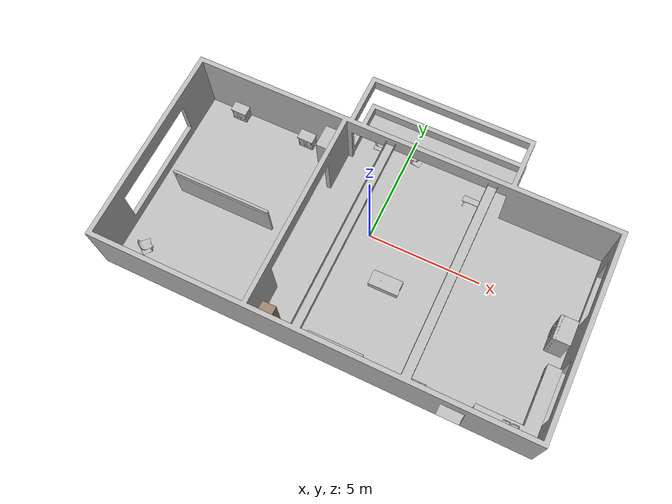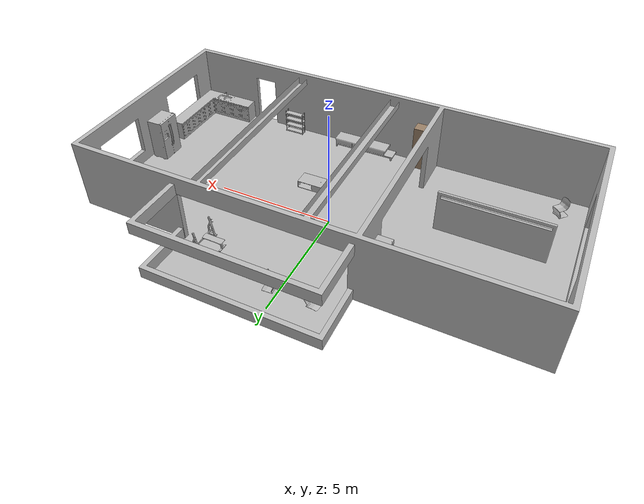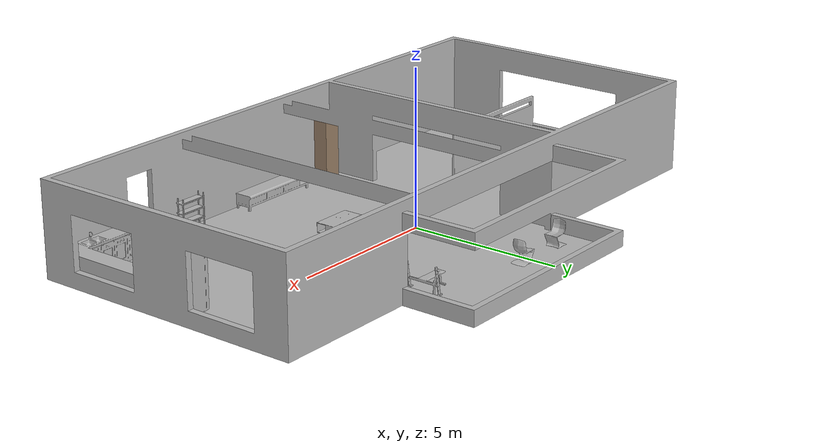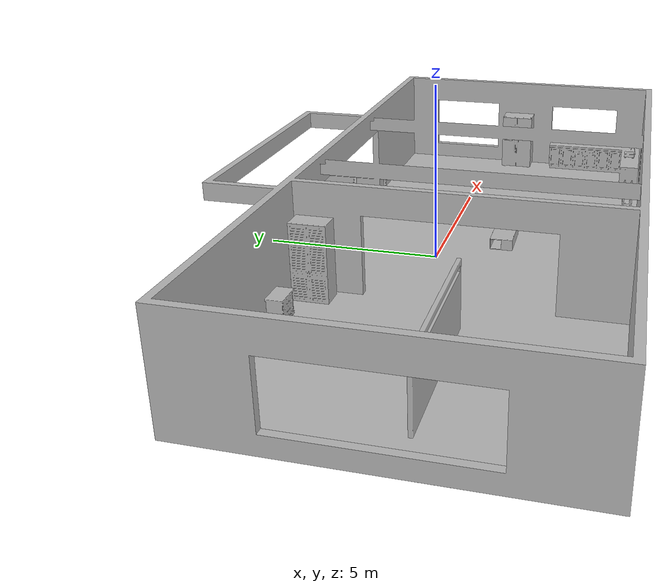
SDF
<sdf version="1.8">
 <world name="small_house">
  <physics name="1ms" type="ignored">
   <max_step_size>0.003</max_step_size>
   <real_time_factor>1.0</real_time_factor>
  </physics>
  <plugin name="ignition::gazebo::systems::Physics" filename="ignition-gazebo-physics-system"/>
  <plugin name="ignition::gazebo::systems::UserCommands" filename="ignition-gazebo-user-commands-system"/>
  <plugin name="ignition::gazebo::systems::SceneBroadcaster" filename="ignition-gazebo-scene-broadcaster-system"/>
  <plugin name="ignition::gazebo::systems::Contact" filename="ignition-gazebo-contact-system"/>
  <gravity>0 0 -9.8</gravity>
  <scene><ambient>0.6 0.6 0.6 1</ambient><background>0.7 0.7 0.7 1</background><shadows>false</shadows></scene>
  <light type="directional" name="sun">
   <cast_shadows>false</cast_shadows>
   <pose>0 0 10 0 0 0</pose>
   <diffuse>0.8 0.8 0.8 1</diffuse>
   <specular>0.2 0.2 0.2 1</specular>
   <direction>-0.3 0.2 -1</direction>
  </light>
  <model name="ground_plane">
   <static>true</static>
   <link name="link">
    <collision name="collision">
     <pose>0 0 -0.05 0 0 0</pose>
     <geometry><plane><normal>0 0 1</normal><size>60 60</size></plane></geometry>
    </collision>
   </link>
  </model>
  <include>
   <name>NightStand_01_001</name>
   <static>true</static>
   <uri>model://aws_robomaker_residential_NightStand_01</uri>
   <pose>-7.7255 2.8604 0.0053 -0.0000 0.0000 0.0000</pose>
  </include>
  <include>
   <name>NightStand_01_002</name>
   <static>true</static>
   <uri>model://aws_robomaker_residential_NightStand_01</uri>
   <pose>-4.4073 2.8604 0.0053 0.0000 0.0000 0.0000</pose>
  </include>
  <include>
   <name>ChairD_01_001</name>
   <static>true</static>
   <uri>model://aws_robomaker_residential_ChairD_01</uri>
   <pose>-1.3808 4.1045 0.0000 0.0000 -0.0000 0.0000</pose>
  </include>
  <include>
   <name>ChairD_01_002</name>
   <static>true</static>
   <uri>model://aws_robomaker_residential_ChairD_01</uri>
   <pose>0.3252 4.1045 0.0000 0.0000 -0.0000 -3.1387</pose>
  </include>
  <include>
   <name>ChairD_01_003</name>
   <static>true</static>
   <uri>model://aws_robomaker_residential_ChairD_01</uri>
   <pose>-8.2708 -4.5045 0.0000 0.0000 -0.0000 0.8697</pose>
  </include>
  <include>
   <name>CoffeeTable_01_001</name>
   <static>true</static>
   <uri>model://aws_robomaker_residential_CoffeeTable_01</uri>
   <pose>1.5123 -1.7334 0.0420 0.0000 0.0000 0.0100</pose>
  </include>
  <include>
   <name>FitnessEquipment_01_001</name>
   <static>true</static>
   <uri>model://aws_robomaker_residential_FitnessEquipment_01</uri>
   <pose>3.4847 3.1691 0.0032 0.0000 -0.0000 0.0000</pose>
  </include>
  <include>
   <name>HouseWallB_01_001</name>
   <static>true</static>
   <uri>model://aws_robomaker_residential_HouseWallB_01</uri>
  </include>
  <include>
   <name>FloorB_01_001</name>
   <static>true</static>
   <uri>model://aws_robomaker_residential_FloorB_01</uri>
  </include>
  <include>
   <name>KitchenCabinet_01_001</name>
   <static>true</static>
   <uri>model://aws_robomaker_residential_KitchenCabinet_01</uri>
   <pose>8.0020 -3.8365 0.0121 0.0000 -0.0000 -3.1400</pose>
  </include>
  <include>
   <name>Refrigerator_01_001</name>
   <static>true</static>
   <uri>model://aws_robomaker_residential_Refrigerator_01</uri>
   <pose>8.7027 -1.0320 0.0000 0.0000 -0.0000 -1.5635</pose>
  </include>
  <include>
   <name>ShoeRack_01_001</name>
   <static>true</static>
   <uri>model://aws_robomaker_residential_ShoeRack_01</uri>
   <pose>4.2980 -5.1736 0.0000 0.0000 -0.0000 0.0000</pose>
  </include>
  <include>
   <name>TVCabinet_01_001</name>
   <static>true</static>
   <uri>model://aws_robomaker_residential_TVCabinet_01</uri>
   <pose>0.6295 -5.1836 -0.0170 0.0000 -0.0000 1.5792</pose>
  </include>
  <include>
   <name>RoomWall_01_001</name>
   <static>true</static>
   <uri>model://aws_robomaker_residential_RoomWall_01</uri>
   <pose>-6.0976 -1.4962 0.0281 0.0000 -0.0000 0.0000</pose>
  </include>
  <include>
   <name>Wardrobe_01_001</name>
   <static>true</static>
   <uri>model://aws_robomaker_residential_Wardrobe_01</uri>
   <pose>-3.1467 2.4762 0.0007 0.0000 -0.0000 -1.5697</pose>
  </include>
  <model name="AirconditionerB_01_001_0">
   <static>true</static>
   <pose>-1.9583 -5.1823 1.0148 0 0 0.0000</pose>
   <link name="link">
    <collision name="collision"><geometry><box><size>0.600 0.500 2.023</size></box></geometry></collision>
    <visual name="visual">
     <geometry><box><size>0.600 0.500 2.023</size></box></geometry>
     <material><ambient>0.6 0.5 0.4 1</ambient><diffuse>0.6 0.5 0.4 1</diffuse></material>
    </visual>
   </link>
  </model>
 </world>
</sdf>

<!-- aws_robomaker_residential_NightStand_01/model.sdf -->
<sdf version="1.6">
  <model name="aws_robomaker_residential_NightStand_01">
    <link name="link">
      <inertial><mass>13.6</mass><inertia><ixx>1</ixx><ixy>0</ixy><ixz>0</ixz><iyy>1</iyy><iyz>0</iyz><izz>1</izz></inertia></inertial>
      <collision name="collision">
        <geometry>
          <mesh>
            <uri>model://aws_robomaker_residential_NightStand_01/meshes/aws_NightStand_01_collision.DAE</uri>
            <scale>1 1 1</scale>
          </mesh>
        </geometry>
      </collision>
      <visual name="visual">
	    <geometry>
          <mesh>
            <uri>model://aws_robomaker_residential_NightStand_01/meshes/aws_NightStand_01_visual.DAE</uri>
          </mesh>
        </geometry>
</visual>
    </link>
    <static>1</static>
  </model>
</sdf>

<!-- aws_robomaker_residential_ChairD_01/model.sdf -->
<sdf version="1.6">
  <model name="aws_robomaker_residential_ChairD_01">
    <link name="link">

      <inertial><mass>4.5</mass><inertia><ixx>1</ixx><ixy>0</ixy><ixz>0</ixz><iyy>1</iyy><iyz>0</iyz><izz>1</izz></inertia></inertial>

      <collision name="collision">

        <geometry>
          <mesh>
            <uri>model://aws_robomaker_residential_ChairD_01/meshes/aws_ChairD_01_collision.DAE</uri>
            <scale>1 1 1</scale>
          </mesh>
        </geometry>

      </collision>
      <visual name="visual">
	    <geometry>
          <mesh>
            <uri>model://aws_robomaker_residential_ChairD_01/meshes/aws_ChairD_01_visual.DAE</uri>
          </mesh>
        </geometry>
</visual>
    </link>
  </model>
</sdf>

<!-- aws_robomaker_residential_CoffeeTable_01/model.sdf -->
<sdf version="1.6">
  <model name="aws_robomaker_residential_CoffeeTable_01">
    <link name="link">
      <inertial><mass>21.7</mass><inertia><ixx>1</ixx><ixy>0</ixy><ixz>0</ixz><iyy>1</iyy><iyz>0</iyz><izz>1</izz></inertia></inertial>

      <collision name="collision">
        <geometry>
          <mesh>
            <uri>model://aws_robomaker_residential_CoffeeTable_01/meshes/aws_CoffeeTable_01_collision.DAE</uri>
            <scale>1 1 1</scale>
          </mesh>
        </geometry>

        <surface>
          <contact>
            <ode>
              <max_vel>0.01</max_vel>
            </ode>
          </contact>
         </surface>
      </collision>

      <visual name="visual">
	    <geometry>
          <mesh>
            <uri>model://aws_robomaker_residential_CoffeeTable_01/meshes/aws_CoffeeTable_01_visual.DAE</uri>
          </mesh>
        </geometry>
</visual>
    </link>
    <static>1</static>
  </model>
</sdf>

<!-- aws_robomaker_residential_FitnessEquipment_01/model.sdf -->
<sdf version="1.6">
  <model name="aws_robomaker_residential_FitnessEquipment_01">
    <link name="link">
      <inertial><mass>80</mass><inertia><ixx>1</ixx><ixy>0</ixy><ixz>0</ixz><iyy>1</iyy><iyz>0</iyz><izz>1</izz></inertia></inertial>
      <collision name="collision">
        <geometry>
          <mesh>
            <uri>model://aws_robomaker_residential_FitnessEquipment_01/meshes/aws_FitnessEquipment_01_collision.DAE</uri>
            <scale>1 1 1</scale>
          </mesh>
        </geometry>
      </collision>
      <visual name="visual">
	    <geometry>
          <mesh>
            <uri>model://aws_robomaker_residential_FitnessEquipment_01/meshes/aws_FitnessEquipment_01_visual.DAE</uri>
          </mesh>
        </geometry>
</visual>
    </link>
  <static>1</static>
  </model>
</sdf>

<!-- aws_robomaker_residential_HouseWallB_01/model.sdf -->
<sdf version="1.6">
  <model name="aws_robomaker_residential_HouseWallB_01">
    <link name="link">
      <inertial><mass>1</mass><inertia><ixx>1</ixx><ixy>0</ixy><ixz>0</ixz><iyy>1</iyy><iyz>0</iyz><izz>1</izz></inertia></inertial>
      <collision name="collision">
        <geometry>
          <mesh>
            <uri>model://aws_robomaker_residential_HouseWallB_01/meshes/aws_HouseWallB_01_collision.DAE</uri>
            <scale>1 1 1</scale>
          </mesh>
        </geometry>
      </collision>
      <visual name="visual">
	    <geometry>
          <mesh>
            <uri>model://aws_robomaker_residential_HouseWallB_01/meshes/aws_HouseWallB_01_visual.DAE</uri>
          </mesh>
        </geometry>
</visual>
    </link>
<static>1</static>
  </model>
</sdf>

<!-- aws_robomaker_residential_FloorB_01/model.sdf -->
<sdf version="1.6">
  <model name="aws_robomaker_residential_FloorB_01">
    <link name="link">
      <inertial><mass>100</mass><inertia><ixx>1</ixx><ixy>0</ixy><ixz>0</ixz><iyy>1</iyy><iyz>0</iyz><izz>1</izz></inertia></inertial>

      <collision name="collision">
        <geometry>
          <mesh>
            <uri>model://aws_robomaker_residential_FloorB_01/meshes/aws_FloorB_01_collision.DAE</uri>
            <scale>1 1 0.9</scale>
          </mesh>
        </geometry>

        <surface>
          <friction>
            <ode>
              <mu>100</mu>
              <mu2>50</mu2>
            </ode>
          </friction>
        </surface>
      </collision>

      <visual name="visual">
	    <geometry>
          <mesh>
            <uri>model://aws_robomaker_residential_FloorB_01/meshes/aws_FloorB_01_visual.DAE</uri>
          </mesh>
        </geometry>
</visual>
    </link>

	<static>1</static>
  </model>
</sdf>

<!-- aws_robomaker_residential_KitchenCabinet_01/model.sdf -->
<sdf version="1.6">
  <model name="aws_robomaker_residential_KitchenCabinet_01">
    <link name="link">
      <inertial><mass>1</mass><inertia><ixx>1</ixx><ixy>0</ixy><ixz>0</ixz><iyy>1</iyy><iyz>0</iyz><izz>1</izz></inertia></inertial>
      <collision name="collision">
        <laser_retro>0</laser_retro>
        <max_contacts>10</max_contacts>
        <geometry>
          <mesh>
            <uri>model://aws_robomaker_residential_KitchenCabinet_01/meshes/aws_KitchenCabinet_01_collision.DAE</uri>
            <scale>1 1 1</scale>
          </mesh>
        </geometry>
      </collision>
      <visual name="visual">
	    <geometry>
          <mesh>
            <uri>model://aws_robomaker_residential_KitchenCabinet_01/meshes/aws_KitchenCabinet_01_visual.DAE</uri>
          </mesh>
        </geometry>
</visual>
    </link>

    <static>1</static>
  </model>
</sdf>

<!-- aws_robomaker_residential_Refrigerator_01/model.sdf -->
<sdf version="1.6">
  <model name="aws_robomaker_residential_Refrigerator_01">
    <link name="link">
      <inertial><mass>1</mass><inertia><ixx>1</ixx><ixy>0</ixy><ixz>0</ixz><iyy>1</iyy><iyz>0</iyz><izz>1</izz></inertia></inertial>
      <collision name="collision">
        <geometry>
          <mesh>
            <uri>model://aws_robomaker_residential_Refrigerator_01/meshes/aws_Refrigerator_01_collision.DAE</uri>
            <scale>1 1 1</scale>
          </mesh>
        </geometry>
      </collision>
      <visual name="visual">
	    <geometry>
          <mesh>
            <uri>model://aws_robomaker_residential_Refrigerator_01/meshes/aws_Refrigerator_01_visual.DAE</uri>
          </mesh>
        </geometry>
</visual>
    </link>
    <static>1</static>
  </model>
</sdf>

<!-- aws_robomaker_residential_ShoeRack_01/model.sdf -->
<sdf version="1.6">
  <model name="aws_robomaker_residential_ShoeRack_01">
    <link name="link">

      <inertial><mass>6</mass><inertia><ixx>1</ixx><ixy>0</ixy><ixz>0</ixz><iyy>1</iyy><iyz>0</iyz><izz>1</izz></inertia></inertial>

      <collision name="collision">

        <geometry>
          <mesh>
            <uri>model://aws_robomaker_residential_ShoeRack_01/meshes/aws_ShoeRack_01_collision.DAE</uri>
            <scale>1 1 1</scale>
          </mesh>
        </geometry>

        <surface>
          <friction>
            <ode>
              <mu>0.2</mu>
              <mu2>0.2</mu2>
            </ode>
          </friction>

          <contact>
            <ode>
              <kd>2500</kd>
            </ode>
          </contact>

        </surface>

      </collision>

      <visual name="visual">
	    <geometry>
          <mesh>
            <uri>model://aws_robomaker_residential_ShoeRack_01/meshes/aws_ShoeRack_01_visual.DAE</uri>
          </mesh>
        </geometry>
</visual>

    </link>
  </model>
</sdf>

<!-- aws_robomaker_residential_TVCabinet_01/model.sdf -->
<sdf version="1.6">
  <model name="aws_robomaker_residential_TVCabinet_01">
    <link name="link">

      <inertial><mass>59.2</mass><inertia><ixx>1</ixx><ixy>0</ixy><ixz>0</ixz><iyy>1</iyy><iyz>0</iyz><izz>1</izz></inertia></inertial>

      <collision name="collision">
        <geometry>
          <mesh>
            <uri>model://aws_robomaker_residential_TVCabinet_01/meshes/aws_TVCabinet_01_collision.DAE</uri>
            <scale>1 1 1</scale>
          </mesh>
        </geometry>
      </collision>

      <visual name="visual">
	    <geometry>
          <mesh>
            <uri>model://aws_robomaker_residential_TVCabinet_01/meshes/aws_TVCabinet_01_visual.DAE</uri>
          </mesh>
        </geometry>
</visual>
    </link>
  <static>1</static>
  </model>
</sdf>

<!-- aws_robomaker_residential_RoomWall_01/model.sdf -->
<sdf version="1.6">
  <model name="aws_robomaker_residential_RoomWall_01">
    <link name="link">
      <inertial><mass>100</mass><inertia><ixx>1</ixx><ixy>0</ixy><ixz>0</ixz><iyy>1</iyy><iyz>0</iyz><izz>1</izz></inertia></inertial>
      <collision name="collision">
        <geometry>
          <mesh>
            <uri>model://aws_robomaker_residential_RoomWall_01/meshes/aws_RoomWall_01_collision.DAE</uri>
            <scale>1 1 1</scale>
          </mesh>
        </geometry>
      </collision>
      <visual name="visual">
	    <geometry>
          <mesh>
            <uri>model://aws_robomaker_residential_RoomWall_01/meshes/aws_RoomWall_01_visual.DAE</uri>
          </mesh>
        </geometry>
</visual>
    </link>
  <static>1</static>
  </model>
</sdf>

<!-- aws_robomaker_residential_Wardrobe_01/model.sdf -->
<sdf version="1.6">
  <model name="aws_robomaker_residential_Wardrobe_01">
    <link name="link">
      <inertial><mass>51.7</mass><inertia><ixx>1</ixx><ixy>0</ixy><ixz>0</ixz><iyy>1</iyy><iyz>0</iyz><izz>1</izz></inertia></inertial>
      <collision name="collision">
        <geometry>
          <mesh>
            <uri>model://aws_robomaker_residential_Wardrobe_01/meshes/aws_Wardrobe_01_collision.DAE</uri>
            <scale>1 1 1</scale>
          </mesh>
        </geometry>
      </collision>
      <visual name="visual">
	    <geometry>
          <mesh>
            <uri>model://aws_robomaker_residential_Wardrobe_01/meshes/aws_Wardrobe_01_visual.DAE</uri>
          </mesh>
        </geometry>
</visual>
    </link>
    <static>1</static>
  </model>
</sdf>
